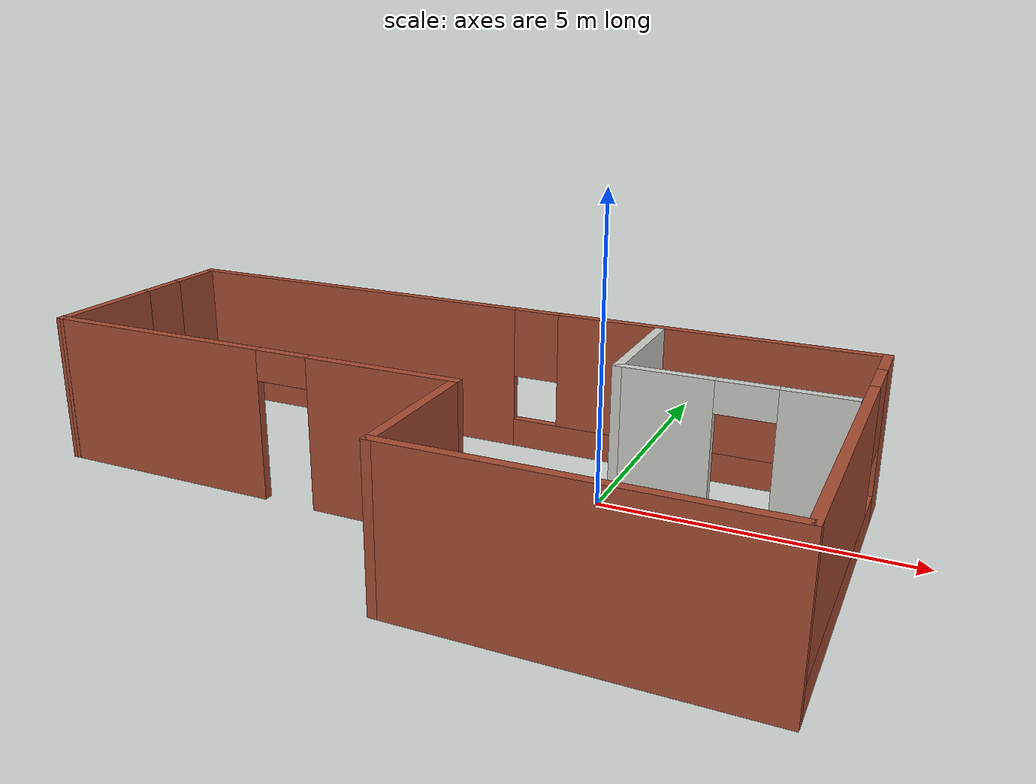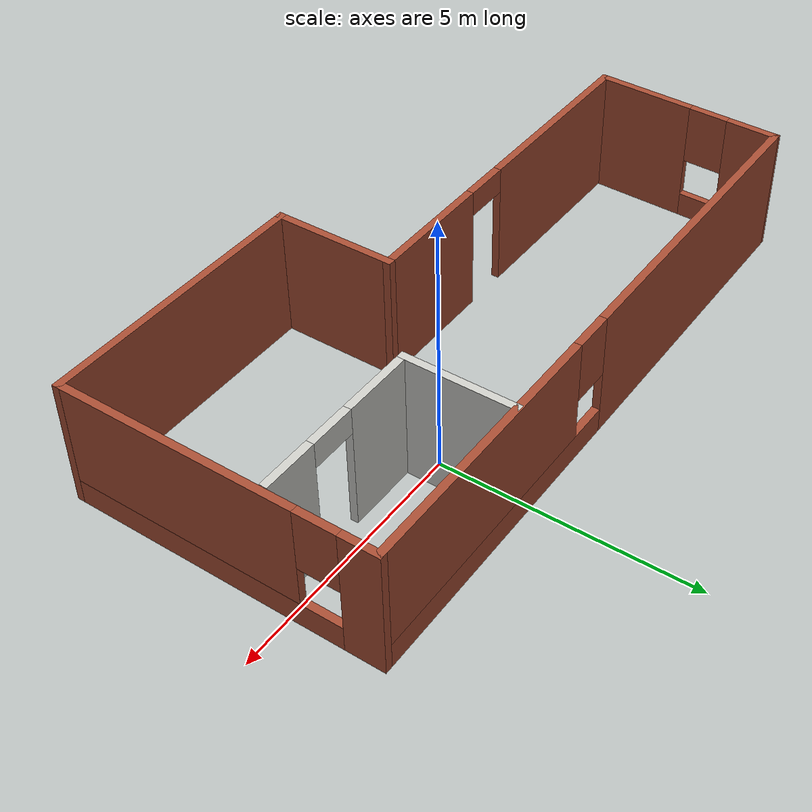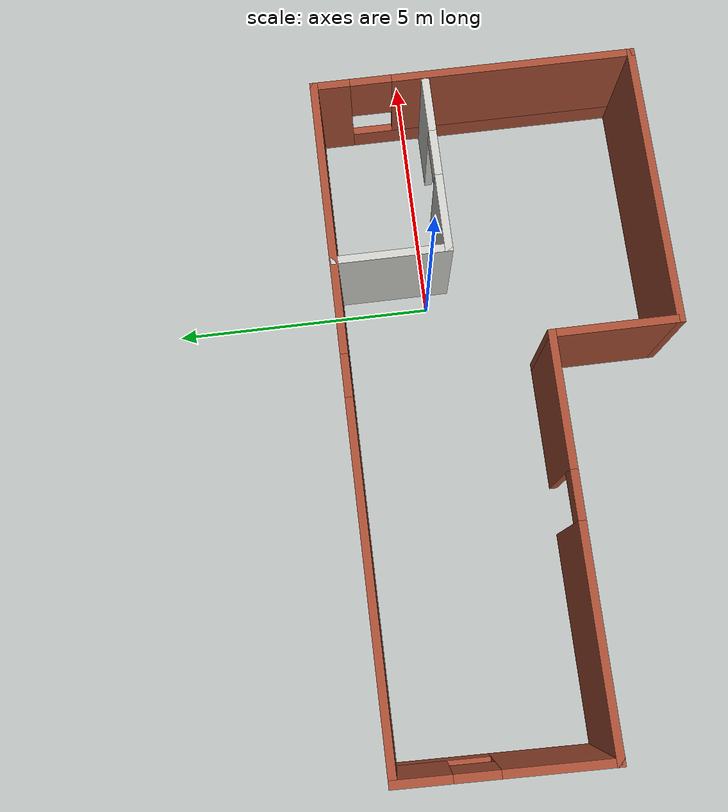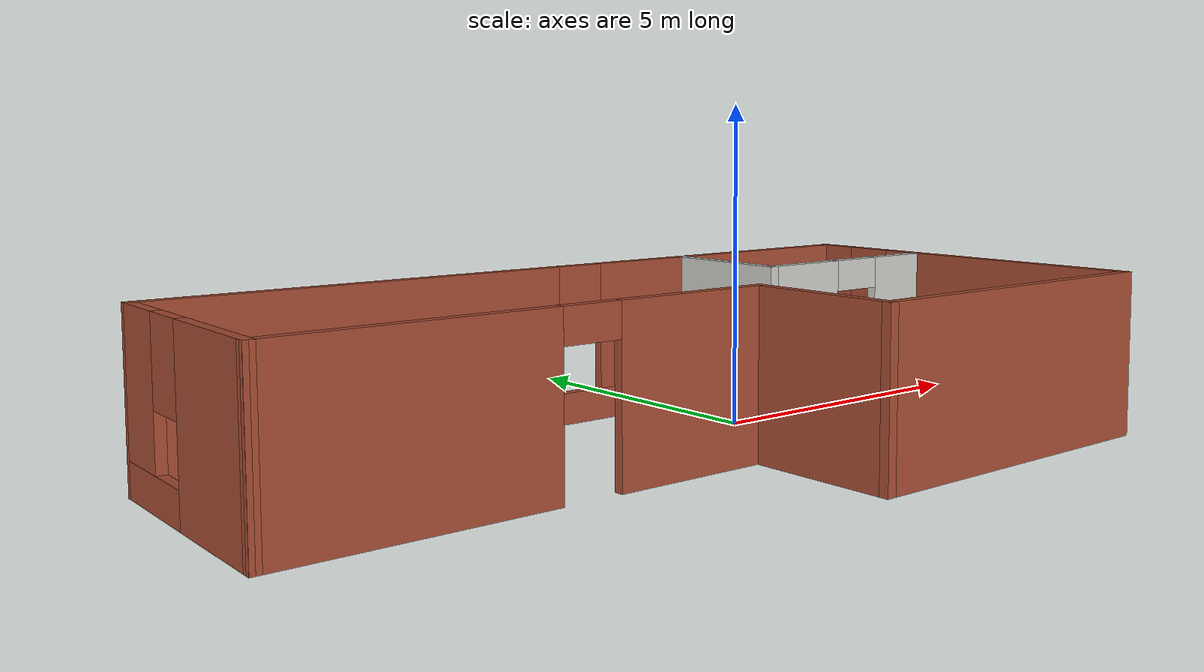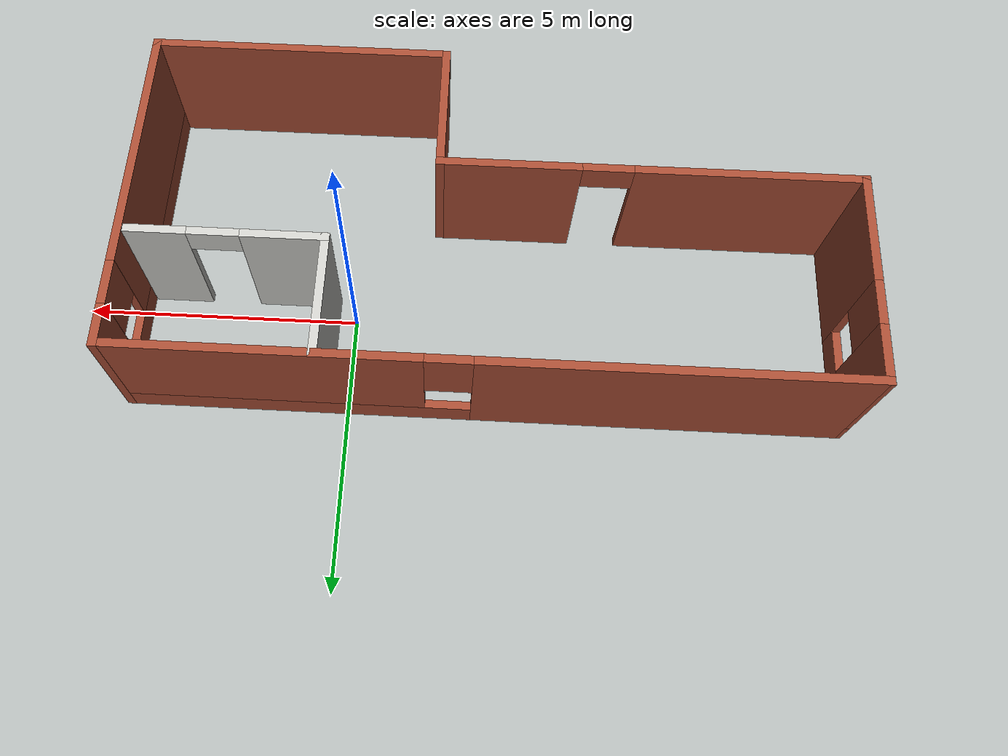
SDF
<?xml version='1.0'?>
<sdf version='1.7'>
  <model name='world'>
    <pose>-2.44862 -1.32523 0 0 -0 0</pose>
    <link name='Wall_10'>
      <pose>4.51631 0.925883 0 0 -0 0</pose>
      <visual name='Wall_10_Visual_0'>
        <pose>-0.989145 0 1.25 0 -0 0</pose>
        <geometry>
          <box>
            <size>1.52171 0.15 2.5</size>
          </box>
        </geometry>
        <material>
          <script>
            <uri>file://media/materials/scripts/gazebo.material</uri>
            <name>Gazebo/CeilingTiled</name>
          </script>
          <ambient>1 1 1 1</ambient>
        </material>
        <meta>
          <layer>0</layer>
        </meta>
      </visual>
      <collision name='Wall_10_Collision_0'>
        <geometry>
          <box>
            <size>1.52171 0.15 2.5</size>
          </box>
        </geometry>
        <pose>-0.989145 0 1.25 0 -0 0</pose>
      </collision>
      <visual name='Wall_10_Visual_1'>
        <pose>1.21086 0 1.25 0 -0 0</pose>
        <geometry>
          <box>
            <size>1.07829 0.15 2.5</size>
          </box>
        </geometry>
        <material>
          <script>
            <uri>file://media/materials/scripts/gazebo.material</uri>
            <name>Gazebo/CeilingTiled</name>
          </script>
          <ambient>1 1 1 1</ambient>
        </material>
        <meta>
          <layer>0</layer>
        </meta>
      </visual>
      <collision name='Wall_10_Collision_1'>
        <geometry>
          <box>
            <size>1.07829 0.15 2.5</size>
          </box>
        </geometry>
        <pose>1.21086 0 1.25 0 -0 0</pose>
      </collision>
      <visual name='Wall_10_Visual_2'>
        <pose>0.22171 0 2.25 0 -0 0</pose>
        <geometry>
          <box>
            <size>0.9 0.15 0.5</size>
          </box>
        </geometry>
        <material>
          <script>
            <uri>file://media/materials/scripts/gazebo.material</uri>
            <name>Gazebo/CeilingTiled</name>
          </script>
          <ambient>1 1 1 1</ambient>
        </material>
        <meta>
          <layer>0</layer>
        </meta>
      </visual>
      <collision name='Wall_10_Collision_2'>
        <geometry>
          <box>
            <size>0.9 0.15 0.5</size>
          </box>
        </geometry>
        <pose>0.22171 0 2.25 0 -0 0</pose>
      </collision>
    </link>
    <link name='Wall_2'>
      <pose>0.050987 3.04901 0 0 -0 0</pose>
      <visual name='Wall_2_Visual_0'>
        <pose>-3.07947 0 1.25 0 -0 0</pose>
        <geometry>
          <box>
            <size>6.59105 0.15 2.5</size>
          </box>
        </geometry>
        <material>
          <script>
            <uri>file://media/materials/scripts/gazebo.material</uri>
            <name>Gazebo/Bricks</name>
          </script>
          <ambient>1 1 1 1</ambient>
        </material>
        <meta>
          <layer>0</layer>
        </meta>
      </visual>
      <collision name='Wall_2_Collision_0'>
        <geometry>
          <box>
            <size>6.59105 0.15 2.5</size>
          </box>
        </geometry>
        <pose>-3.07947 0 1.25 0 -0 0</pose>
      </collision>
      <visual name='Wall_2_Visual_1'>
        <pose>3.29553 0 0.25 0 -0 0</pose>
        <geometry>
          <box>
            <size>6.15895 0.15 0.5</size>
          </box>
        </geometry>
        <material>
          <script>
            <uri>file://media/materials/scripts/gazebo.material</uri>
            <name>Gazebo/Bricks</name>
          </script>
          <ambient>1 1 1 1</ambient>
        </material>
        <meta>
          <layer>0</layer>
        </meta>
      </visual>
      <collision name='Wall_2_Collision_1'>
        <geometry>
          <box>
            <size>6.15895 0.15 0.5</size>
          </box>
        </geometry>
        <pose>3.29553 0 0.25 0 -0 0</pose>
      </collision>
      <visual name='Wall_2_Visual_2'>
        <pose>3.69553 0 1.5 0 -0 0</pose>
        <geometry>
          <box>
            <size>5.35895 0.15 2</size>
          </box>
        </geometry>
        <material>
          <script>
            <uri>file://media/materials/scripts/gazebo.material</uri>
            <name>Gazebo/Bricks</name>
          </script>
          <ambient>1 1 1 1</ambient>
        </material>
        <meta>
          <layer>0</layer>
        </meta>
      </visual>
      <collision name='Wall_2_Collision_2'>
        <geometry>
          <box>
            <size>5.35895 0.15 2</size>
          </box>
        </geometry>
        <pose>3.69553 0 1.5 0 -0 0</pose>
      </collision>
      <visual name='Wall_2_Visual_3'>
        <pose>0.616052 0 1.9 0 -0 0</pose>
        <geometry>
          <box>
            <size>0.8 0.15 1.2</size>
          </box>
        </geometry>
        <material>
          <script>
            <uri>file://media/materials/scripts/gazebo.material</uri>
            <name>Gazebo/Bricks</name>
          </script>
          <ambient>1 1 1 1</ambient>
        </material>
        <meta>
          <layer>0</layer>
        </meta>
      </visual>
      <collision name='Wall_2_Collision_3'>
        <geometry>
          <box>
            <size>0.8 0.15 1.2</size>
          </box>
        </geometry>
        <pose>0.616052 0 1.9 0 -0 0</pose>
      </collision>
    </link>
    <link name='Wall_3'>
      <pose>6.35099 -0.000986 0 0 -0 -1.5708</pose>
      <visual name='Wall_3_Visual_0'>
        <pose>-2.74393 0 1.25 0 -0 0</pose>
        <geometry>
          <box>
            <size>0.762139 0.15 2.5</size>
          </box>
        </geometry>
        <material>
          <script>
            <uri>file://media/materials/scripts/gazebo.material</uri>
            <name>Gazebo/Bricks</name>
          </script>
          <ambient>1 1 1 1</ambient>
        </material>
        <meta>
          <layer>0</layer>
        </meta>
      </visual>
      <collision name='Wall_3_Collision_0'>
        <geometry>
          <box>
            <size>0.762139 0.15 2.5</size>
          </box>
        </geometry>
        <pose>-2.74393 0 1.25 0 -0 0</pose>
      </collision>
      <visual name='Wall_3_Visual_1'>
        <pose>0.381069 0 0.25 0 -0 0</pose>
        <geometry>
          <box>
            <size>5.48786 0.15 0.5</size>
          </box>
        </geometry>
        <material>
          <script>
            <uri>file://media/materials/scripts/gazebo.material</uri>
            <name>Gazebo/Bricks</name>
          </script>
          <ambient>1 1 1 1</ambient>
        </material>
        <meta>
          <layer>0</layer>
        </meta>
      </visual>
      <collision name='Wall_3_Collision_1'>
        <geometry>
          <box>
            <size>5.48786 0.15 0.5</size>
          </box>
        </geometry>
        <pose>0.381069 0 0.25 0 -0 0</pose>
      </collision>
      <visual name='Wall_3_Visual_2'>
        <pose>0.781069 0 1.5 0 -0 0</pose>
        <geometry>
          <box>
            <size>4.68786 0.15 2</size>
          </box>
        </geometry>
        <material>
          <script>
            <uri>file://media/materials/scripts/gazebo.material</uri>
            <name>Gazebo/Bricks</name>
          </script>
          <ambient>1 1 1 1</ambient>
        </material>
        <meta>
          <layer>0</layer>
        </meta>
      </visual>
      <collision name='Wall_3_Collision_2'>
        <geometry>
          <box>
            <size>4.68786 0.15 2</size>
          </box>
        </geometry>
        <pose>0.781069 0 1.5 0 -0 0</pose>
      </collision>
      <visual name='Wall_3_Visual_3'>
        <pose>-1.96286 0 1.9 0 -0 0</pose>
        <geometry>
          <box>
            <size>0.8 0.15 1.2</size>
          </box>
        </geometry>
        <material>
          <script>
            <uri>file://media/materials/scripts/gazebo.material</uri>
            <name>Gazebo/Bricks</name>
          </script>
          <ambient>1 1 1 1</ambient>
        </material>
        <meta>
          <layer>0</layer>
        </meta>
      </visual>
      <collision name='Wall_3_Collision_3'>
        <geometry>
          <box>
            <size>0.8 0.15 1.2</size>
          </box>
        </geometry>
        <pose>-1.96286 0 1.9 0 -0 0</pose>
      </collision>
    </link>
    <link name='Wall_4'>
      <collision name='Wall_4_Collision'>
        <geometry>
          <box>
            <size>5.5 0.15 2.5</size>
          </box>
        </geometry>
        <pose>0 0 1.25 0 -0 0</pose>
      </collision>
      <visual name='Wall_4_Visual'>
        <pose>0 0 1.25 0 -0 0</pose>
        <geometry>
          <box>
            <size>5.5 0.15 2.5</size>
          </box>
        </geometry>
        <material>
          <script>
            <uri>file://media/materials/scripts/gazebo.material</uri>
            <name>Gazebo/Bricks</name>
          </script>
          <ambient>1 1 1 1</ambient>
        </material>
        <meta>
          <layer>0</layer>
        </meta>
      </visual>
      <pose>3.67599 -3.05099 0 0 -0 3.14159</pose>
    </link>
    <link name='Wall_5'>
      <collision name='Wall_5_Collision'>
        <geometry>
          <box>
            <size>2.5 0.15 2.5</size>
          </box>
        </geometry>
        <pose>0 0 1.25 0 -0 0</pose>
      </collision>
      <visual name='Wall_5_Visual'>
        <pose>0 0 1.25 0 -0 0</pose>
        <geometry>
          <box>
            <size>2.5 0.15 2.5</size>
          </box>
        </geometry>
        <material>
          <script>
            <uri>file://media/materials/scripts/gazebo.material</uri>
            <name>Gazebo/Bricks</name>
          </script>
          <ambient>1 1 1 1</ambient>
        </material>
        <meta>
          <layer>0</layer>
        </meta>
      </visual>
      <pose>1.00099 -1.87599 0 0 -0 1.5708</pose>
    </link>
    <link name='Wall_6'>
      <pose>-2.67401 -0.700986 0 0 -0 3.14159</pose>
      <visual name='Wall_6_Visual_0'>
        <pose>-2.47521 0 1.25 0 -0 0</pose>
        <geometry>
          <box>
            <size>2.54958 0.15 2.5</size>
          </box>
        </geometry>
        <material>
          <script>
            <uri>file://media/materials/scripts/gazebo.material</uri>
            <name>Gazebo/Bricks</name>
          </script>
          <ambient>1 1 1 1</ambient>
        </material>
        <meta>
          <layer>0</layer>
        </meta>
      </visual>
      <collision name='Wall_6_Collision_0'>
        <geometry>
          <box>
            <size>2.54958 0.15 2.5</size>
          </box>
        </geometry>
        <pose>-2.47521 0 1.25 0 -0 0</pose>
      </collision>
      <visual name='Wall_6_Visual_1'>
        <pose>1.72479 0 1.25 0 -0 0</pose>
        <geometry>
          <box>
            <size>4.05042 0.15 2.5</size>
          </box>
        </geometry>
        <material>
          <script>
            <uri>file://media/materials/scripts/gazebo.material</uri>
            <name>Gazebo/Bricks</name>
          </script>
          <ambient>1 1 1 1</ambient>
        </material>
        <meta>
          <layer>0</layer>
        </meta>
      </visual>
      <collision name='Wall_6_Collision_1'>
        <geometry>
          <box>
            <size>4.05042 0.15 2.5</size>
          </box>
        </geometry>
        <pose>1.72479 0 1.25 0 -0 0</pose>
      </collision>
      <visual name='Wall_6_Visual_2'>
        <pose>-0.750423 0 2.25 0 -0 0</pose>
        <geometry>
          <box>
            <size>0.9 0.15 0.5</size>
          </box>
        </geometry>
        <material>
          <script>
            <uri>file://media/materials/scripts/gazebo.material</uri>
            <name>Gazebo/Bricks</name>
          </script>
          <ambient>1 1 1 1</ambient>
        </material>
        <meta>
          <layer>0</layer>
        </meta>
      </visual>
      <collision name='Wall_6_Collision_2'>
        <geometry>
          <box>
            <size>0.9 0.15 0.5</size>
          </box>
        </geometry>
        <pose>-0.750423 0 2.25 0 -0 0</pose>
      </collision>
    </link>
    <link name='Wall_7'>
      <pose>-6.29901 1.17401 0 0 -0 1.54414</pose>
      <visual name='Wall_7_Visual_0'>
        <pose>-0.931788 0 1.25 0 -0 0</pose>
        <geometry>
          <box>
            <size>2.03776 0.15 2.5</size>
          </box>
        </geometry>
        <material>
          <script>
            <uri>file://media/materials/scripts/gazebo.material</uri>
            <name>Gazebo/Bricks</name>
          </script>
          <ambient>1 1 1 1</ambient>
        </material>
        <meta>
          <layer>0</layer>
        </meta>
      </visual>
      <collision name='Wall_7_Collision_0'>
        <geometry>
          <box>
            <size>2.03776 0.15 2.5</size>
          </box>
        </geometry>
        <pose>-0.931788 0 1.25 0 -0 0</pose>
      </collision>
      <visual name='Wall_7_Visual_1'>
        <pose>1.01888 0 0.25 0 -0 0</pose>
        <geometry>
          <box>
            <size>1.86358 0.15 0.5</size>
          </box>
        </geometry>
        <material>
          <script>
            <uri>file://media/materials/scripts/gazebo.material</uri>
            <name>Gazebo/Bricks</name>
          </script>
          <ambient>1 1 1 1</ambient>
        </material>
        <meta>
          <layer>0</layer>
        </meta>
      </visual>
      <collision name='Wall_7_Collision_1'>
        <geometry>
          <box>
            <size>1.86358 0.15 0.5</size>
          </box>
        </geometry>
        <pose>1.01888 0 0.25 0 -0 0</pose>
      </collision>
      <visual name='Wall_7_Visual_2'>
        <pose>1.41888 0 1.5 0 -0 0</pose>
        <geometry>
          <box>
            <size>1.06358 0.15 2</size>
          </box>
        </geometry>
        <material>
          <script>
            <uri>file://media/materials/scripts/gazebo.material</uri>
            <name>Gazebo/Bricks</name>
          </script>
          <ambient>1 1 1 1</ambient>
        </material>
        <meta>
          <layer>0</layer>
        </meta>
      </visual>
      <collision name='Wall_7_Collision_2'>
        <geometry>
          <box>
            <size>1.06358 0.15 2</size>
          </box>
        </geometry>
        <pose>1.41888 0 1.5 0 -0 0</pose>
      </collision>
      <visual name='Wall_7_Visual_3'>
        <pose>0.48709 0 1.9 0 -0 0</pose>
        <geometry>
          <box>
            <size>0.8 0.15 1.2</size>
          </box>
        </geometry>
        <material>
          <script>
            <uri>file://media/materials/scripts/gazebo.material</uri>
            <name>Gazebo/Bricks</name>
          </script>
          <ambient>1 1 1 1</ambient>
        </material>
        <meta>
          <layer>0</layer>
        </meta>
      </visual>
      <collision name='Wall_7_Collision_3'>
        <geometry>
          <box>
            <size>0.8 0.15 1.2</size>
          </box>
        </geometry>
        <pose>0.48709 0 1.9 0 -0 0</pose>
      </collision>
    </link>
    <link name='Wall_9'>
      <collision name='Wall_9_Collision'>
        <geometry>
          <box>
            <size>2.25 0.15 2.5</size>
          </box>
        </geometry>
        <pose>0 0 1.25 0 -0 0</pose>
      </collision>
      <visual name='Wall_9_Visual'>
        <pose>0 0 1.25 0 -0 0</pose>
        <geometry>
          <box>
            <size>2.25 0.15 2.5</size>
          </box>
        </geometry>
        <material>
          <script>
            <uri>file://media/materials/scripts/gazebo.material</uri>
            <name>Gazebo/CeilingTiled</name>
          </script>
          <ambient>1 1 1 1</ambient>
        </material>
        <meta>
          <layer>0</layer>
        </meta>
      </visual>
      <pose>2.84131 1.97588 0 0 -0 -1.5708</pose>
    </link>
    <static>1</static>
  </model>
</sdf>
